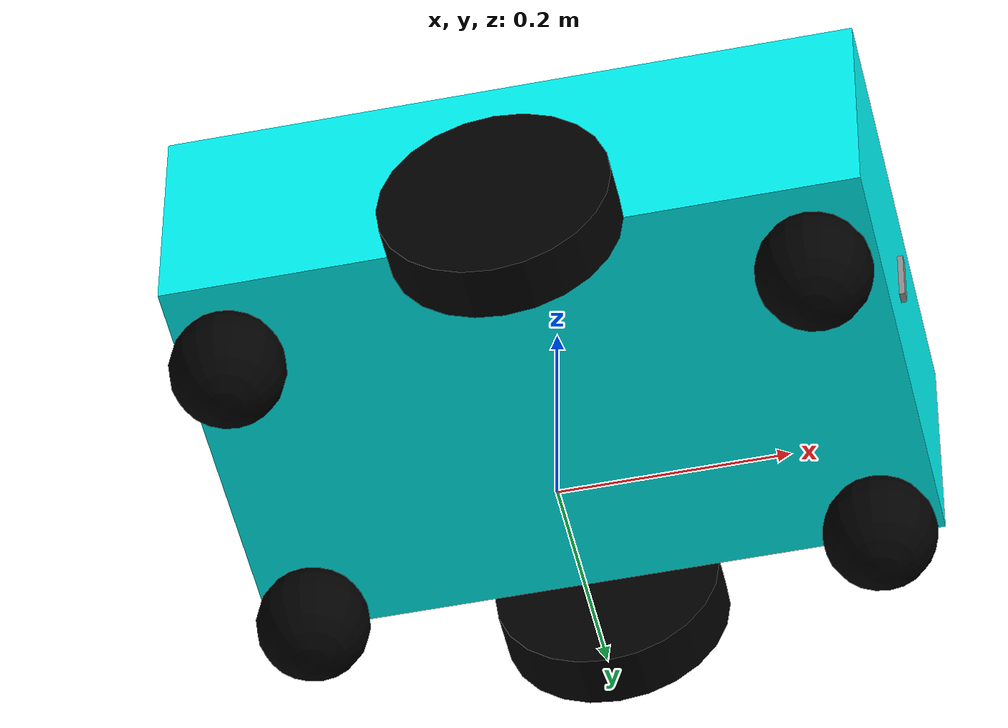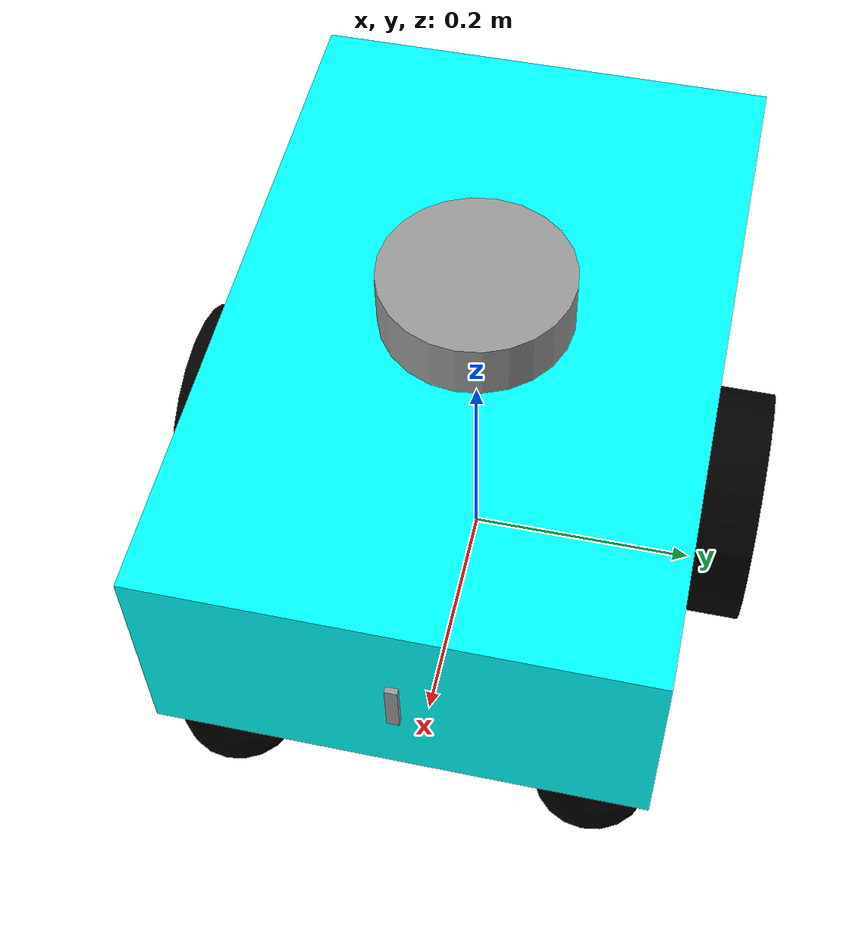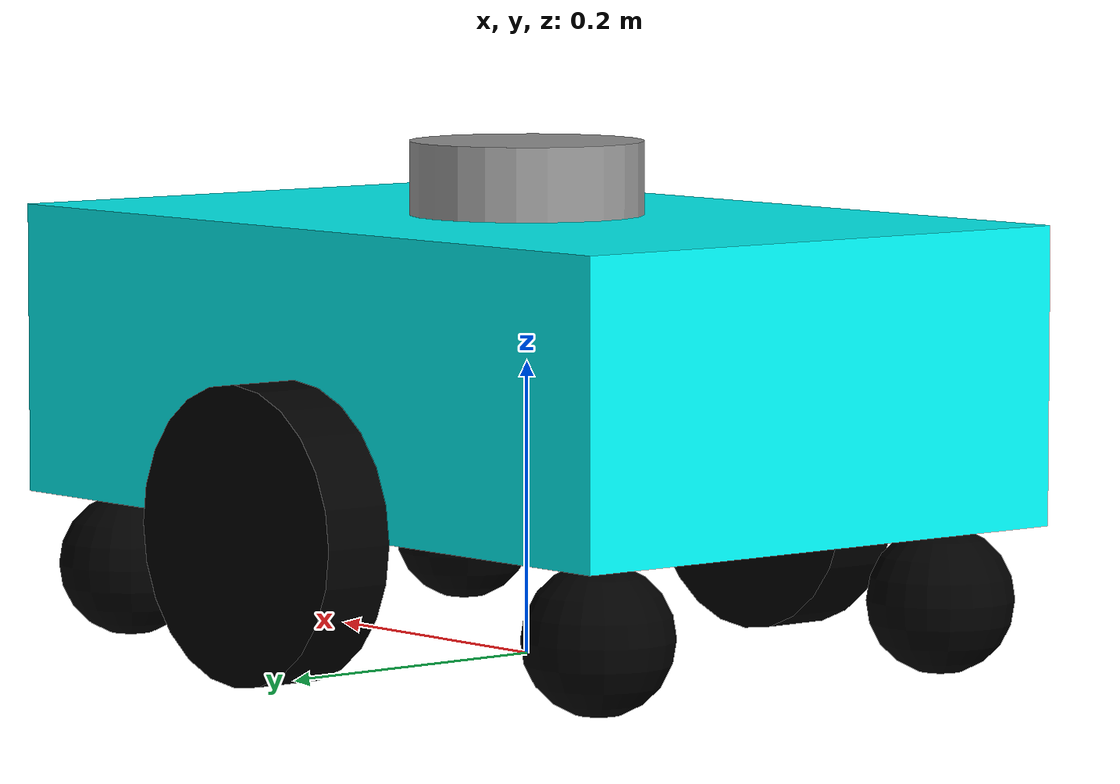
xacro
<?xml version="1.0"?>
<robot name="my_robot" xmlns:xacro="http://www.ros.org/wiki/xacro"> <!--basit bir urdf dosyasında tanımlama gerçekleştiremiyorum bunun için xmlns'i de eklemeliyim-->

<!--aşağıdaki komut satırları aslında python'daki kütüphane eklemesi olarak bilinir-->
    <xacro:include filename = "alfa_properties.xacro" /> <!--önce macrolarımı çağırıp-->

    <xacro:include filename = "my_robot.xacro" />  <!--ardından öy_robto'u çağırıyorum-->

    <xacro:include filename = "alfa_properties_gazebo.xacro" />

    <xacro:include filename = "camera.xacro" />

    <xacro:include filename = "lidar.xacro" />

</robot>

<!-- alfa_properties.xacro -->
<robot name="my_robot" xmlns:xacro="http://www.ros.org/wiki/xacro"> <!--basit bir urdf dosyasında tanımlama gerçekleştiremiyorum bunun için xmlns'i de eklemeliyim-->

    <material name = "cyan">
        <color rgba = "0 1 1 1" />
    </material>

     <material name = "black">
        <color rgba = "0 0 0 1" />
    </material>

    <xacro:macro name = "box_inertia" params = "m l w h xyz rpy"> <!--kütle için = m, ölçüler için ise = l, w,h'yi kullanabilirz-->
        <inertial> <!--eylemsilzik momenti tanımlarken bu etiketi kullanırız.-->
            <origin xyz = "${xyz}" rpy = "${rpy}" /> <!--nesnemin orgin'İni-->
            <mass value = "${m}" /> <!--kütlesini ve aşağıdaki tag'dan da anlaşılacağı üzere eylemsizliği tanımlamalıyım sırasıyla-->
            <inertia ixx = "${(m / 12) * (h*h + l*l)}" ixy = "0" ixz = "0"
                     iyy = "${(m / 12) * (w*w + l*l)}" iyz = "0"
                     izz = "${(m / 12) * (w*w + h*h)}" />
        </inertial>
    </xacro:macro>

<!--burada yazdıklarımı my_robot içindeki her bir link içinde ayrı ayrı çağırabilirim-->

    <xacro:macro name = "cylinder_inertia" params = "m r h xyz rpy"> <!--kütle için = m, yarıcaç için = r, yükseklik içn = h-->
        <inertial>
            <origin xyz = "${xyz}" rpy = "${rpy}" />
            <mass value = "${m}" />
            <inertia ixx = "${(m / 12) * (3*r*r + h*h)}" ixy = "0" ixz = "0"
                     iyy = "${(m / 12) * (3*r*r + h*h)}" iyz = "0"
                     izz = "${(m / 2)  * (r*r)}" />
        </inertial>
    </xacro:macro>

    <xacro:macro name = "sphere_inertia" params = "m r xyz rpy"> <!--kütle için = m, yarıcaç için = r -->
        <inertial>
            <origin xyz = "${xyz}" rpy = "${rpy}" />
            <mass value = "${m}" />
            <inertia ixx = "${(2 / 5) * m * r * r}" ixy = "0" ixz = "0"
                     iyy = "${(2 / 5) * m * r * r}" iyz = "0"
                     izz = "${(2 / 5) * m * r * r}" />
        </inertial>
    </xacro:macro>
</robot>

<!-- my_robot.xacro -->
<robot name="my_robot"  xmlns:xacro="http://www.ros.org/wiki/xacro"> <!--basit bir urdf dosyasında tanımlama gerçekleştiremiyorum bunun için xmlns'i de eklemeliyim-->

    <xacro:property name = "base_width" value = "0.6" />
    <xacro:property name = "base_length" value = "0.4" />
    <xacro:property name = "base_height" value = "0.2" />

    <xacro:property name = "wheel_radius" value = "0.1" />
    <xacro:property name = "wheel_length" value = "0.05" />

    <xacro:property name = "caster_wheel_radius" value = "0.05" />

   <xacro:macro name = "wheel_link" params = "prefix" >
        <link name = "${prefix}_wheel_link"><!--bunu aşağıda çağıracağım-->
            <visual>
                <geometry>
                    <cylinder radius = "${wheel_radius}" length = "${wheel_length}"/>
                </geometry>
                <origin xyz = "0 0 0 " rpy = "${pi/2} 0 0" /> <!--bu şekilde bir gösterim ile tekerimi 90 derece döndürmeyi sağlarım-->
                <material name = "black" />
            </visual>

            <collision>
                <geometry>
                    <cylinder radius = "${wheel_radius}" length = "${wheel_length}"/>
                </geometry>
                <origin xyz = "0 0 0 " rpy = "${pi/2} 0 0" /> <!--bu şekilde bir gösterim ile tekerimi 90 derece döndürmeyi sağlarım-->
            </collision>

            <xacro:cylinder_inertia m = "1.0" r = "${2*wheel_radius}"
                                              h = "${2*wheel_length}"
                                              xyz = "0 0 0"
                                              rpy = "${pi/2} 0 0" />
                                              <!--burada da 2* ile genişeltmeler yaparak eylemsilik momentini arttırıp daha stabil bir
                                              durum elde etmiş olurum-->
        </link>
    </xacro:macro>

    <xacro:macro name = "caster_wheel_link" params = "prefix" >
        <link name = "${prefix}_caster_wheel_link" >  <!--bunu aşağıda çağıracağım-->
            <visual>
                <geometry>
                    <sphere radius = "${caster_wheel_radius}" />
                </geometry>
                <origin xyz = "0 0 0 " rpy = "0 0 0" />
                <material name = "black" />
            </visual>

            <collision>
                <geometry>
                    <sphere radius = "${caster_wheel_radius}" />
                </geometry>
                <origin xyz = "0 0 0 " rpy = "0 0 0" />
            </collision>

            <xacro:sphere_inertia m = "0.5" r = "${2*caster_wheel_radius}"
                                            xyz = "0 0 0"
                                            rpy = "0 0 0" /> <!--seçilne kütle değerinin gerçeğe yakın olmasına dikkat etmeliyim-->
                                         <!--burada da 2* ile genişeltmeler yaparak eylemsilikmomentini arttırıp daha stabil bir
                                              durum elde etmiş olurum-->
        </link>
    </xacro:macro>

    <link name = "base_footprint" /> <!--robotu zemindne bir miktar yukarıda tutmak için kullanırım-->

    <link name = "base_link" >
        <visual>
            <geometry>
                <box size = "${base_width} ${base_length} ${base_height}" />  <!--with, length, heigt-->
            </geometry>
            <origin xyz = "0 0 0" rpy = "0 0 0" />
            <material name = "cyan"/>
        </visual>

        <collision>
            <geometry>
                <box size = "${base_width} ${base_length} ${base_height}" />  <!--with, length, heigt-->
            </geometry>
            <origin xyz = "0 0 0" rpy = "0 0 0" />
        </collision>

        <xacro:box_inertia m = "5.0" l = "${2*base_length}"
                                     w = "${2*base_width}"
                                     h = "${2*base_height}"
                                     xyz = "0 0 0"
                                     rpy = "0 0 0" /> <!--xyz konumu ifade ederken rpy oryantasyonu ifade ediyor.-->
                                     <!--bu değerleri bir miktar arttırdığımızda eylemsizlik momenti artacağı için daha stabil bir durum
                                     elde etmiş olurum. 2* genişleterek bu durumu düzeltemiş olurum.-->
    </link>

    <!--prefix'i aşağıdaki satırlar ile çağırıyorum-->
    <xacro:wheel_link prefix = "right" />
    <xacro:wheel_link prefix = "left" />

    <xacro:caster_wheel_link prefix = "pre_right" />
    <xacro:caster_wheel_link prefix = "pre_left" />
    <xacro:caster_wheel_link prefix = "back_right" />
    <xacro:caster_wheel_link prefix = "back_left" />

    <joint name = "base_joint" type = "fixed">
        <parent link = "base_footprint" />
        <child link = "base_link" />
        <origin xyz = "0 0 ${(base_height / 2) + wheel_radius}" rpy = "0 0 0" />
    </joint>

    <joint name = "base_right_wheel_joint" type = "continuous">
        <parent link = "base_link" />
        <child link = "right_wheel_link" />
        <origin xyz = "${- (base_height / 2) + (wheel_radius) }
                       ${-((base_length / 2) + (wheel_length / 2))}
                       ${- wheel_radius}"
                       rpy = "0 0 0" />  <!--aşağı yönde kaydırdığım için - yazdım-->
        <axis xyz = "0 1 0"/>   <!--tekerleğimin istediğim yönde dönmesi için y ekseni etrafında dönmesine izin vermeliyim.
        continuous tipi eklem kullanıyorsam onun döneceği ekseni tanımlamam gerekiyordu. -->
    </joint>

    <joint name = "base_left_wheel_joint" type = "continuous">
        <parent link = "base_link" />
        <child link = "left_wheel_link" />
        <origin xyz = "${- (base_height / 2) + (wheel_radius) }
                       ${((base_length / 2) + (wheel_length / 2))}
                       ${- wheel_radius}"
                       rpy = "0 0 0" />  <!--aşağı yönde kaydırdığım için - yazdım-->
        <axis xyz = "0 1 0"/>   <!--tekerleğimin istediğim yönde dönmesi için y ekseni etrafında dönmesine izin vermeliyim.
        continuous tipi eklem kullanıyorsam onun döneceği ekseni tanımlamam gerekiyordu. -->
    </joint>

    <joint name = "base_pre_right_caster_wheel_joint" type = "continuous">
        <parent link = "base_link" />
        <child link = "pre_right_caster_wheel_link" />
        <origin xyz = "${-(caster_wheel_radius * 6) + (caster_wheel_radius)}
                       ${(base_length / 2) - (caster_wheel_radius)}
                       ${-3 * (caster_wheel_radius)}"
                       rpy = "0 0 0" />  <!--aşağı yönde kaydırdığım için - yazdım-->
        <axis xyz = "0 1 0"/>   <!--tekerleğimin istediğim yönde dönmesi için y ekseni etrafında dönmesine izin vermeliyim.
        continuous tipi eklem kullanıyorsam onun döneceği ekseni tanımlamam gerekiyordu. -->
    </joint>

    <joint name = "base_pre_left_caster_wheel_joint" type = "continuous">
        <parent link = "base_link" />
        <child link = "pre_left_caster_wheel_link" />
        <origin xyz = "${-(caster_wheel_radius * 6) + (caster_wheel_radius)}
                       ${-(base_length / 2) + (caster_wheel_radius)}
                       ${-3 * (caster_wheel_radius)}"
                       rpy = "0 0 0" />  <!--aşağı yönde kaydırdığım için - yazdım-->
        <axis xyz = "0 1 0"/>   <!--tekerleğimin istediğim yönde dönmesi için y ekseni etrafında dönmesine izin vermeliyim.
        continuous tipi eklem kullanıyorsam onun döneceği ekseni tanımlamam gerekiyordu. -->
    </joint>

    <joint name = "base_back_right_caster_wheel_joint" type = "continuous">
        <parent link = "base_link" />
        <child link = "back_right_caster_wheel_link" />
        <origin xyz = "${(caster_wheel_radius * 6) - (caster_wheel_radius)}
                       ${(base_length / 2) - (caster_wheel_radius)}
                       ${-3 * (caster_wheel_radius)}"
                       rpy = "0 0 0" />  <!--aşağı yönde kaydırdığım için - yazdım-->
        <axis xyz = "0 1 0"/>   <!--tekerleğimin istediğim yönde dönmesi için y ekseni etrafında dönmesine izin vermeliyim.
        continuous tipi eklem kullanıyorsam onun döneceği ekseni tanımlamam gerekiyordu. -->
    </joint>

    <joint name = "base_back_left_caster_wheel_joint" type = "continuous">
        <parent link = "base_link" />
        <child link = "back_left_caster_wheel_link" />
        <origin xyz = "${(caster_wheel_radius * 6) - (caster_wheel_radius)}
                       ${-(base_length / 2) + (caster_wheel_radius)}
                       ${-3 * (caster_wheel_radius)}"
                       rpy = "0 0 0" />  <!--aşağı yönde kaydırdığım için - yazdım-->
        <axis xyz = "0 1 0"/>   <!--tekerleğimin istediğim yönde dönmesi için y ekseni etrafında dönmesine izin vermeliyim.
        continuous tipi eklem kullanıyorsam onun döneceği ekseni tanımlamam gerekiyordu. -->
    </joint>
</robot>

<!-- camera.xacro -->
<robot name="my_robot" xmlns:xacro="http://ros.org/wiki/xacro">

 <!-- Kamera boyutları için xacro değişkenleri -->
    <xacro:property name="camera_width" value="0.1"/>
    <xacro:property name="camera_length" value="0.01"/>
    <xacro:property name="camera_height" value="0.05"/>

    <link name = "camera_link" >
        <visual>
            <geometry>
                <box size = "${camera_length} ${camera_length} ${camera_height}" />  <!--with, length, heigt-->
            </geometry>
            <origin xyz = "0 0 0" rpy = "0 0 0" />
            <material name = "Gazebo/Grey"/>
        </visual>

        <collision>
            <geometry>
                <box size = "${camera_length} ${camera_length} ${camera_height}" />  <!--with, length, heigt-->
            </geometry>
            <origin xyz = "0 0 0" rpy = "0 0 0" />
        </collision>

        <xacro:box_inertia m = "5.0" l = "${2*base_length}"
                                     w = "${2*base_width}"
                                     h = "${2*base_height}"
                                     xyz = "0 0 0"
                                     rpy = "0 0 0" /> <!--xyz konumu ifade ederken rpy oryantasyonu ifade ediyor.-->
                                     <!--bu değerleri bir miktar arttırdığımızda eylemsizlik momenti artacağı için daha stabil bir durum
                                     elde etmiş olurum. 2* genişleterek bu durumu düzeltemiş olurum.-->
    </link>

       <!-- Kamera ve base_link arasında sabit bağlantı (joint) -->
    <joint name="base_camera_joint" type="fixed">
        <parent link="base_link"/>
        <child link="camera_link"/>
        <origin xyz="0.3 0 0" rpy="0 0 0"/>
    </joint>

     <!-- Gazebo kamera sensörü -->
    <gazebo reference="camera_link">
        <sensor name="camera_sensor" type="camera">
            <pose>0 0 0 0 0 0</pose>
            <visualize>true</visualize>
            <update_rate>30.0</update_rate>  <!-- Kamera FPS oranı -->
            <camera>
                <horizontal_fov>1.047</horizontal_fov> <!-- Görüş açısı -->
                <image>
                    <width>640</width>  <!-- Çözünürlük genişliği -->
                    <height>480</height> <!-- Çözünürlük yüksekliği -->
                    <format>R8G8B8</format> <!-- Görüntü formatı -->
                </image>
                <clip>
                    <near>0.1</near>  <!-- Minimum görüş mesafesi -->
                    <far>100</far>    <!-- Maksimum görüş mesafesi -->
                </clip>
            </camera>

            <!-- ROS ile kamera verilerini yayınlamak için plugin -->
            <plugin name="camera_controller" filename="libgazebo_ros_camera.so">
                <always_on>true</always_on>
                <update_rate>30.0</update_rate>
                <camera_name>camera_sensor</camera_name>
                <image_topic_name>/camera/image_raw</image_topic_name> <!-- ROS topic ismi -->
                <camera_info_topic_name>/camera/camera_info</camera_info_topic_name>
                <frame_name>camera_link</frame_name>
                <hack_baseline>0.07</hack_baseline>
            </plugin>
        </sensor>
    </gazebo>

</robot>

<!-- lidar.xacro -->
<robot name="my_robot" xmlns:xacro="http://ros.org/wiki/xacro">

 <!-- Kamera boyutları için xacro değişkenleri -->
    <xacro:property name="lidar_radius" value="0.08"/>
    <xacro:property name="lidar_length" value="0.05"/>

    <link name = "lidar_link">
        <visual>
            <geometry>
                <cylinder radius = "${lidar_radius}" length = "${lidar_length}"/>
            </geometry>
            <origin xyz = "0 0 0 " rpy = "0 0 0" /> <!--bu şekilde bir gösterim ile tekerimi 90 derece döndürmeyi sağlarım-->
            <material name = "grey" />
        </visual>

        <collision>
            <geometry>
                <cylinder radius = "${lidar_radius}" length = "${lidar_length}"/>
            </geometry>
            <origin xyz = "0 0 0 " rpy = "0 0 0" /> <!--bu şekilde bir gösterim ile tekerimi 90 derece döndürmeyi sağlarım-->
        </collision>

        <xacro:cylinder_inertia m = "0.2" r = "${2*lidar_radius}"
                                          h = "${2*lidar_length}"
                                          xyz = "0 0 0"
                                          rpy = "0 0 0" />
                                              <!--burada da 2* ile genişeltmeler yaparak eylemsilik momentini arttırıp daha stabil bir
                                              durum elde etmiş olurum-->
        </link>

       <!-- Kamera ve base_link arasında sabit bağlantı (joint) -->
    <joint name="base_lidar_joint" type="fixed">
        <parent link="base_link"/>
        <child link="lidar_link"/>
        <origin xyz="0 0 ${(base_height / 2) + (lidar_length / 2)}" rpy="0 0 0"/> <!--lidar'ı robotun biraz üzerine yerleştirebilmke için gerekir-->
    </joint>

     <!-- Gazebo kamera sensörü -->
    <gazebo reference="lidar_link">
        <sensor name="lidar_sensor" type="ray">
            <pose>0 0 0 0 0 0</pose>
            <visualize>true</visualize>
            <update_rate>30.0</update_rate>  <!-- Kamera FPS oranı -->

            <ray>
                <scan>
                    <horizontal>
                        <samples>720</samples> <!--etraftaki yani toplam 360 dereceden toplam 720 adet nokta alıyor-->
                        <resolution>1</resolution>
                        <min_angle>-3.14</min_angle> <!--taradığı alanı ifade eder ve bu 360 derece dönen 2 boyutlu bir lidarın özelliğidr.-->
                        <max_angle>3.14</max_angle> <!--taradığı alanı ifade eder ve bu 360 derece dönen 2 boyutlu bir lidarın özelliğidr-->
                    </horizontal>
                </scan>
                <range> <!--lidar'ın; min, max ve çözünürlüğünü girdiğim değerleri range etiketi arsında yazarım. .-->
                    <min>0.1</min>
                    <max>30.0</max>
                    <resolution>0.01</resolution>
                </range>
            </ray>

            <!-- ROS ile kamera verilerini yayınlamak için plugin -->
            <plugin name="lidar_controller" filename="libgazebo_ros_ray_sensor.so">
                <output_type>sensor_msgs/LaserScan</output_type> <!--lidar veya lazer sensor_msgs/LaserScan ile haberleşir. -->
            </plugin>
        </sensor>
    </gazebo>

</robot>
